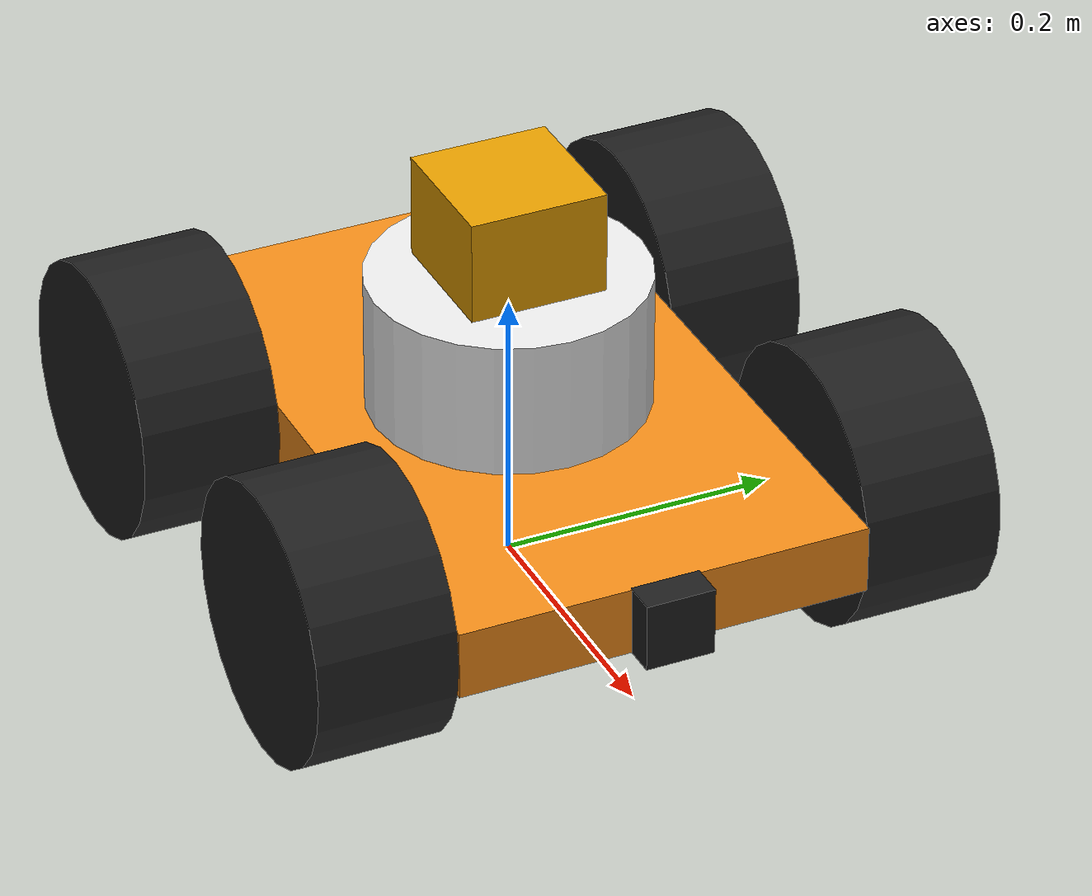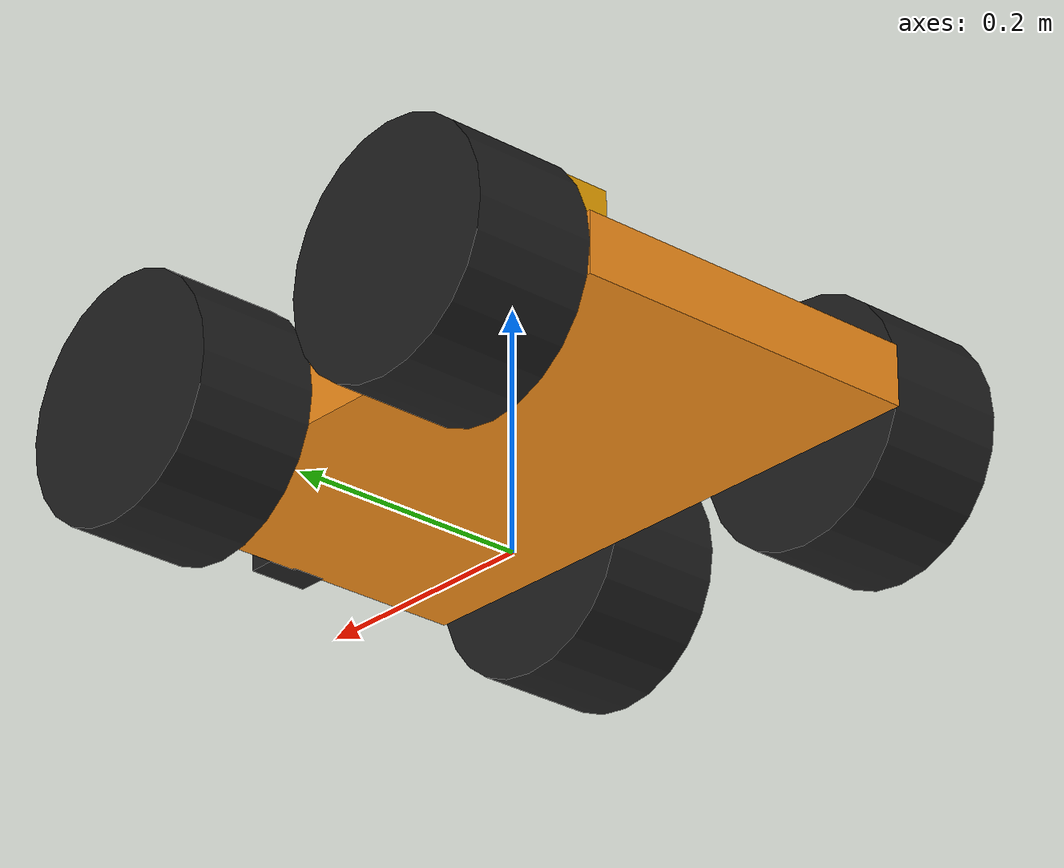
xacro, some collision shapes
<?xml version='1.0'?>

 <robot name="my_robot" xmlns:xacro="http://www.ros.org/wiki/xacro">

<!-- Color Definition -->

  <gazebo reference="chassis">
    <material>Gazebo/Orange</material>
  </gazebo>
  <gazebo reference="front_left_wheel">
    <material>Gazebo/Black</material>
  </gazebo>
  <gazebo reference="front_right_wheel">
    <material>Gazebo/Black</material>
  </gazebo>
  <gazebo reference="back_left_wheel">
    <material>Gazebo/Black</material>
  </gazebo>
  <gazebo reference="back_right_wheel">
    <material>Gazebo/Black</material>
  </gazebo>
  <gazebo reference="lidar_base">
    <material>Gazebo/White</material>
  </gazebo>
  <gazebo reference="camera">
    <material>Gazebo/Black</material>
  </gazebo>

  <xacro:include filename="$(find my_robot)/urdf/my_robot.gazebo" />

<!-- Robot Footprint -->

  <link name="robot_footprint"></link>

  <joint name="robot_footprint_joint" type="fixed">
    <origin xyz="0 0 0" rpy="0 0 0" />
    <parent link="robot_footprint"/>
    <child link="chassis" />
  </joint>

<!-- Robot Chassis -->

  <link name='chassis'>

    <pose>0 0 0.1 0 0 0</pose>

    <inertial>
      <mass value="15.0"/>
      <origin xyz="0 0 0.1" rpy=" 0 0 0"/>
      <inertia ixx="0.1" ixy="0" ixz="0" iyy="0.1" iyz="0" izz="0.1"/>
    </inertial>

    <visual name='chassis_visual'>
      <origin xyz="0 0 0.1" rpy=" 0 0 0"/>
      <geometry>
        <box size=".5 .3 .05"/>
      </geometry>
    </visual>

    <collision name='collision'>
      <origin xyz="0 0 0.1" rpy=" 0 0 0"/>
      <geometry>
        <box size=".5 .3 .05"/>
      </geometry>
    </collision>

   </link>

<!-- Robot Front Left Wheel Link-->

   <link name='front_left_wheel'>

    <pose>0 0 0.1 0 0 0</pose>

    <inertial>
      <mass value="1.0"/>
      <origin xyz="0 0 0" rpy=" 0 1.5705 1.5705"/>
      <inertia ixx="0.1" ixy="0" ixz="0" iyy="0.1" iyz="0" izz="0.1"/>
    </inertial>

    <visual name='front_left_wheel_visual'>
      <origin xyz="0 0 0" rpy=" 0 1.5705 1.5705"/>
      <geometry>
         <cylinder radius="0.1" length="0.1"/>
      </geometry>
    </visual>

    <collision name='collision'>
      <origin xyz="0 0 0" rpy=" 0 1.5705 1.5705"/>
      <geometry>
        <cylinder radius="0.1" length="0.1"/>
      </geometry>
    </collision>

   </link>

<!-- Robot Front Left Wheel Joint-->

   <joint name="front_left_hinge" type="continuous">
     <origin xyz="0.15 0.2 0.1" rpy="0 0 0"/>
     <parent link="chassis"/>
     <child link="front_left_wheel"/>
     <axis xyz="0 1 0"/>
     <limit effort="10000" velocity="1000"/>
     <dynamics damping="1.0" friction="1.0"/>
   </joint>

<!-- Robot Front Right Wheel Link-->

   <link name='front_right_wheel'>

    <inertial>
      <mass value="1.0"/>
      <origin xyz="0 0 0" rpy=" 0 1.5705 1.5705"/>
      <inertia ixx="0.1" ixy="0" ixz="0" iyy="0.1" iyz="0" izz="0.1"/>
    </inertial>

    <visual name='front_right_wheel_visual'>
      <origin xyz="0 0 0" rpy=" 0 1.5705 1.5705 "/>
      <geometry>
        <cylinder radius="0.1" length="0.1"/>
      </geometry>
    </visual>

    <collision name='front_right_collision'>
      <origin xyz="0 0 0" rpy=" 0 1.5705 1.5705"/>
      <geometry>
        <cylinder radius="0.1" length="0.1"/>
      </geometry>
    </collision>

   </link>

<!-- Robot Front Right Wheel Joint-->

   <joint name="front_right_hinge" type="continuous">
     <origin xyz="0.15 -0.2 0.1" rpy="0 0 0"/>
     <parent link="chassis"/>
     <child link="front_right_wheel"/>
     <axis xyz="0 1 0"/>
     <limit effort="10000" velocity="1000"/>
     <dynamics damping="1.0" friction="1.0"/>
   </joint>

<!-- Robot Back Left Wheel Link-->

   <link name='back_left_wheel'>

    <inertial>
      <mass value="1.0"/>
      <origin xyz="0 0 0" rpy=" 0 1.5705 1.5705"/>
      <inertia ixx="0.1" ixy="0" ixz="0" iyy="0.1" iyz="0" izz="0.1"/>
    </inertial>

    <visual name='back_left_wheel_visual'>
      <origin xyz="0 0 0" rpy=" 0 1.5705 1.5705"/>
      <geometry>
        <cylinder radius="0.1" length="0.1"/>
      </geometry>
    </visual>

    <collision name='back_left_collision'>
      <origin xyz="0 0 0 " rpy=" 0 1.5705 1.5705"/>
      <geometry>
        <cylinder radius="0.1" length="0.1"/>
      </geometry>
    </collision>

   </link>

<!-- Robot Back Left Wheel Joint-->

   <joint name="back_left_hinge" type="continuous">
     <origin xyz="-0.15 0.2 0.1" rpy="0 0 0"/>
     <parent link="chassis"/>
     <child link="back_left_wheel"/>
     <axis xyz="0 1 0"/>
     <limit effort="10000" velocity="1000"/>
     <dynamics damping="1.0" friction="1.0"/>
   </joint>

<!-- Robot Back Right Wheel Link-->

   <link name='back_right_wheel'>

    <inertial>
      <mass value="1.0"/>
      <origin xyz="0 0 0" rpy=" 1.5705 0 0"/>
      <inertia ixx="0.1" ixy="0" ixz="0" iyy="0.1" iyz="0" izz="0.1"/>
    </inertial>

    <visual name='back_right_wheel_visual'>
      <origin xyz="0 0 0" rpy=" 0 1.5705 1.5705"/>
      <geometry>
        <cylinder radius="0.1" length="0.1"/>
      </geometry>
    </visual>

    <collision name='back_right_collision'>
      <origin xyz="0 0 0" rpy=" 0 1.5705 1.5705"/>
      <geometry>
        <cylinder radius="0.1" length="0.1"/>
      </geometry>
    </collision>

   </link>

<!-- Robot Back Right Wheel Joint-->

   <joint name="back_right_hinge" type="continuous">
     <origin xyz="-0.15 -0.2 0.1" rpy="0 0 0"/>
     <parent link="chassis"/>
     <child link="back_right_wheel"/>
     <axis xyz="0 1 0"/>
     <limit effort="10000" velocity="1000"/>
     <dynamics damping="1.0" friction="1.0"/>
   </joint>

<!-- Lidar Base Link-->

   <link name='lidar_base'>

    <inertial>
      <mass value="1.0"/>
      <origin xyz="0 0 0" rpy=" 0 0 0"/>
      <inertia ixx="0.1" ixy="0" ixz="0" iyy="0.1" iyz="0" izz="0.1"/>
    </inertial>

    <visual name='lidar_base_visual'>
      <origin xyz="0 0 0" rpy=" 0 0 0"/>
      <geometry>
        <cylinder radius="0.1" length="0.1"/>
      </geometry>
    </visual>

   <collision name='lidar_base_collision'>
      <origin xyz="0 0 0" rpy=" 0 0 0"/>
      <geometry>
        <cylinder radius="0.1" length="0.1"/>
      </geometry>
    </collision>

   </link>

<!-- Lidar Base Joint-->

   <joint name="lidar_link" type="fixed">
     <origin xyz="0 0 0.175" rpy="0 0 0"/>
     <parent link="chassis"/>
     <child link="lidar_base"/>
     <axis xyz="0 0 1"/>
   </joint>

<!-- Camera Link-->

   <link name='camera'>

    <inertial>
      <mass value="0.1"/>
      <origin xyz="0 0 0" rpy="0 0 0"/>
      <inertia ixx="1e-6" ixy="0" ixz="0" iyy="1e-6" iyz="0" izz="1e-6"/>
    </inertial>

    <visual name='camera_visual'>
      <origin xyz="0 0 0" rpy="0 0 0"/>
      <geometry>
        <box size=".025 .05 .05"/>
      </geometry>
    </visual>

    <collision name='camera_collision'>
      <origin xyz="0 0 0" rpy="0 0 0"/>
      <geometry>
        <box size=".025 .05 .05"/>
      </geometry>
    </collision>

   </link>

<!-- Camera Joint-->

   <joint name="camera_link" type="fixed">
     <origin xyz="0.26 0 0.1" rpy="0 0 0"/>
     <parent link="chassis"/>
     <child link="camera"/>
     <axis xyz="0 1 0"/>
   </joint>

<!-- Lidar Link-->

   <link name='hokuyo'>

    <inertial>
      <mass value="1e-5"/>
      <origin xyz="0 0 0" rpy="0 0 0"/>
      <inertia ixx="1e-6" ixy="0" ixz="0" iyy="1e-6" iyz="0" izz="1e-6"/>
    </inertial>

    <visual name='hokuyo_visual'>
      <origin xyz="0 0 0" rpy="0 0 0"/>
      <geometry>
        <mesh filename="package://my_robot/meshes/hokuyo.dae"/>
      </geometry>
    </visual>

    <collision name='hokuyo_collision'>
      <origin xyz="0 0 0" rpy="0 0 0"/>
      <geometry>
        <box size=".1 .1 .1"/>
      </geometry>
    </collision>

   </link>

<!-- Lidar Joint-->

   <joint name="hokuyo_link" type="fixed">
     <origin xyz="0 0 0.25" rpy="0 0 0"/>
     <parent link="chassis"/>
     <child link="hokuyo"/>
     <axis xyz="0 0 1"/>
   </joint>

 </robot>
